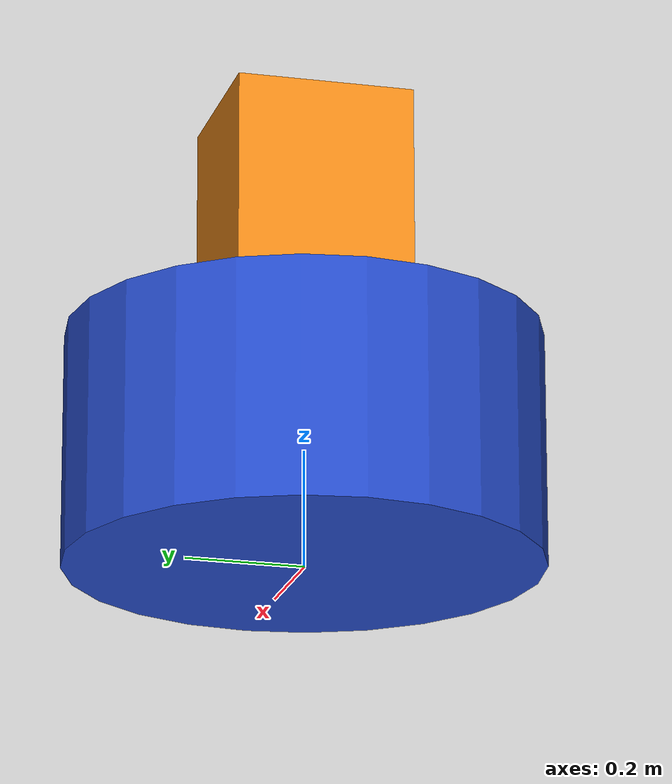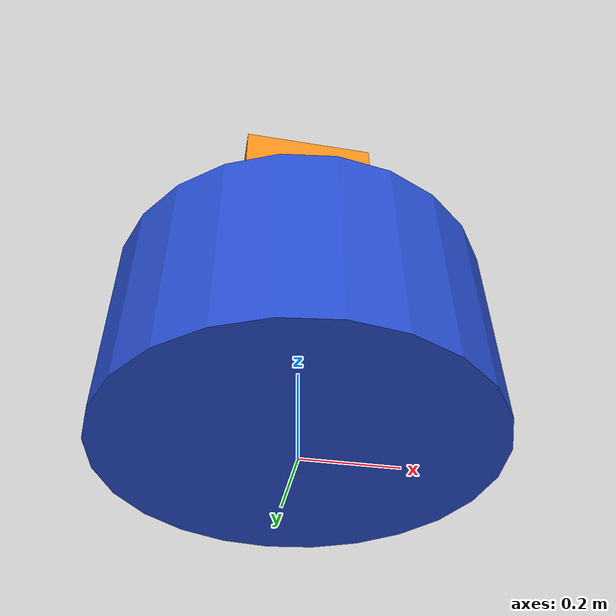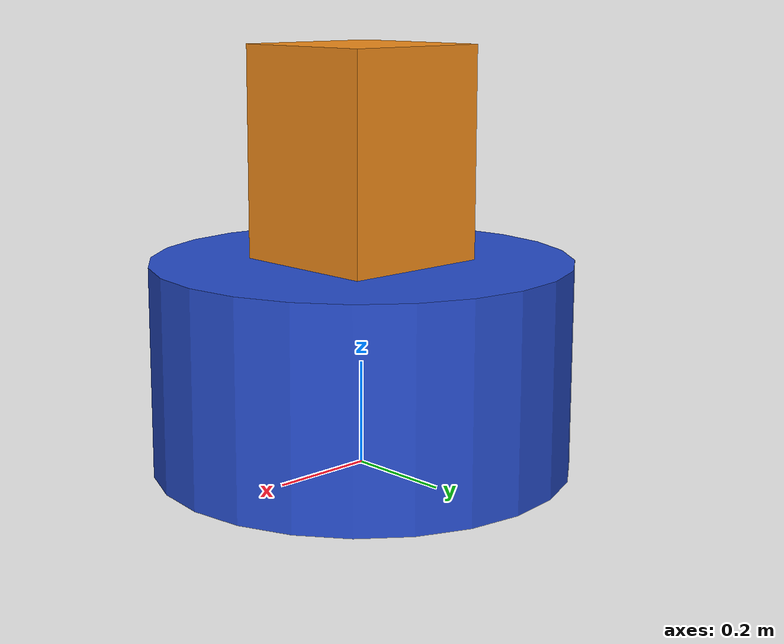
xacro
<?xml version="1.0"?>
<robot name="simple" xmlns:xacro="http://ros.org/wiki/xacro">
  <xacro:include filename="./materials.xacro" />

  <xacro:macro name="default_inertial" params="mass">
    <inertial>
      <mass value="${mass}">${mass}</mass>
      <inertia ixx="1.0" ixy="0.0" ixz="0.0" iyy="1.0" iyz="0.0" izz="1.0">
          <ixx>1</ixx>
          <ixy>0</ixy>
          <ixz>0</ixz>
          <iyy>1</iyy>
          <iyz>0</iyz>
          <izz>1</izz>
      </inertia>
    </inertial>
  </xacro:macro>

  <link name="base_link">
    <visual>
      <geometry>
        <cylinder length="0.4" radius="0.4"/>
      </geometry>
      <!-- set visual origin in the coordinate frame of link -->
      <origin xyz="0 0 0.2"/>
      <material name="blue"/>
    </visual>
    <collision>
      <geometry>
        <cylinder length="0.4" radius="0.4"/>
      </geometry>
      <!-- set visual origin in the coordinate frame of link -->
      <origin xyz="0 0 0.2"/>
    </collision>
    <xacro:default_inertial mass="1"/>
  </link>
  <link name="body_link">
    <visual>
      <geometry>
        <box size="0.3 0.3 0.6"/>
      </geometry>
      <material name="orange"/>
    </visual>
    <collision>
      <geometry>
        <box size="0.3 0.3 0.6"/>
      </geometry>
    </collision>
    <xacro:default_inertial mass="1"/>
  </link>
  <joint name="base_body_joint" type="continuous">
    <parent link="base_link"/>
    <child link="body_link"/>
    <origin rpy="0 0 0" xyz="0 0 0.5"/>
    <axis xyz="0 0 1"/>
  </joint>

  <xacro:include filename="./simple.gazebo" />
</robot>
